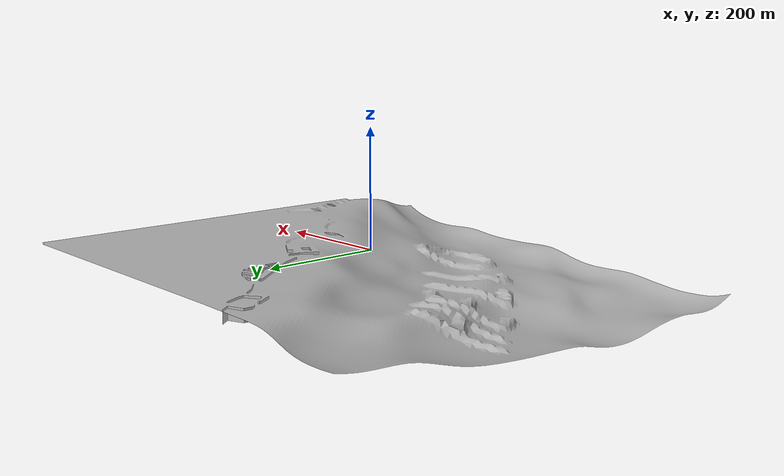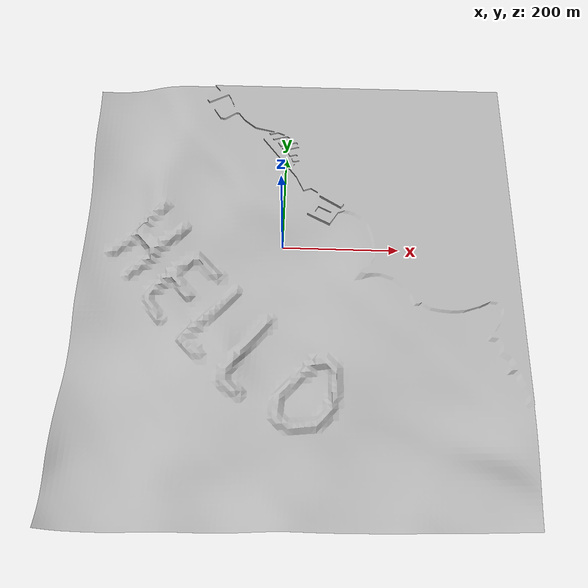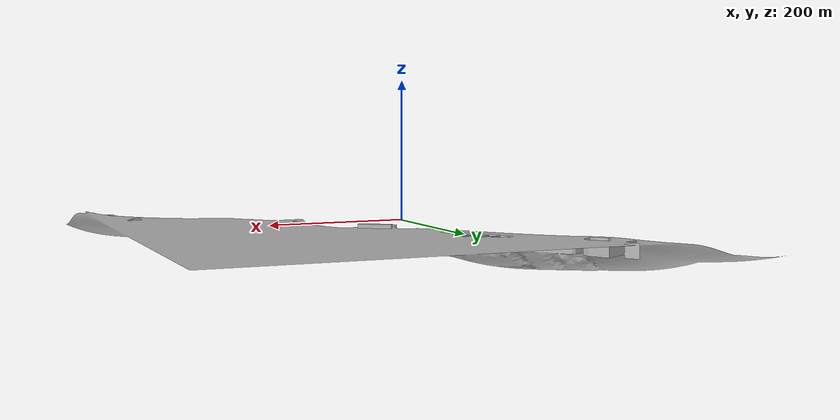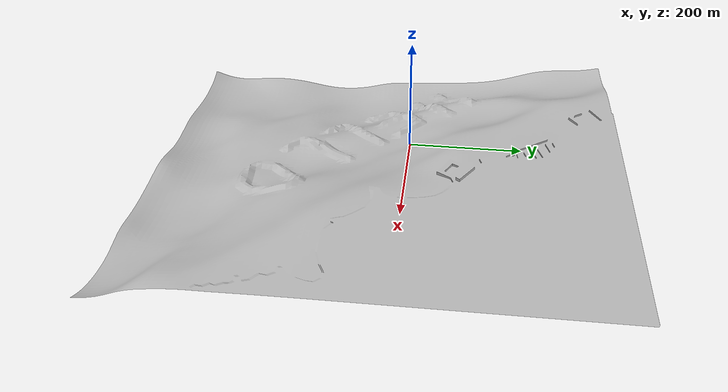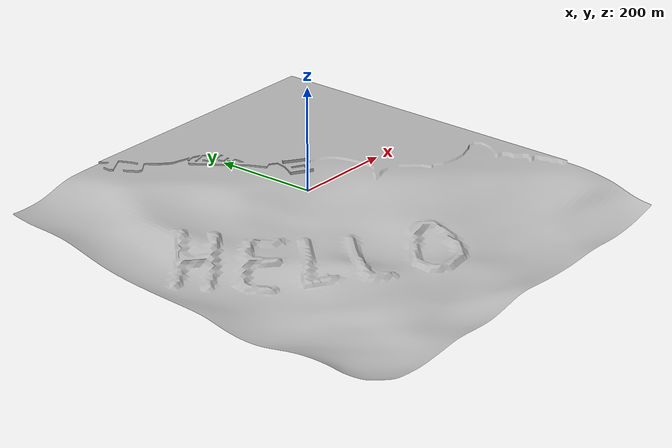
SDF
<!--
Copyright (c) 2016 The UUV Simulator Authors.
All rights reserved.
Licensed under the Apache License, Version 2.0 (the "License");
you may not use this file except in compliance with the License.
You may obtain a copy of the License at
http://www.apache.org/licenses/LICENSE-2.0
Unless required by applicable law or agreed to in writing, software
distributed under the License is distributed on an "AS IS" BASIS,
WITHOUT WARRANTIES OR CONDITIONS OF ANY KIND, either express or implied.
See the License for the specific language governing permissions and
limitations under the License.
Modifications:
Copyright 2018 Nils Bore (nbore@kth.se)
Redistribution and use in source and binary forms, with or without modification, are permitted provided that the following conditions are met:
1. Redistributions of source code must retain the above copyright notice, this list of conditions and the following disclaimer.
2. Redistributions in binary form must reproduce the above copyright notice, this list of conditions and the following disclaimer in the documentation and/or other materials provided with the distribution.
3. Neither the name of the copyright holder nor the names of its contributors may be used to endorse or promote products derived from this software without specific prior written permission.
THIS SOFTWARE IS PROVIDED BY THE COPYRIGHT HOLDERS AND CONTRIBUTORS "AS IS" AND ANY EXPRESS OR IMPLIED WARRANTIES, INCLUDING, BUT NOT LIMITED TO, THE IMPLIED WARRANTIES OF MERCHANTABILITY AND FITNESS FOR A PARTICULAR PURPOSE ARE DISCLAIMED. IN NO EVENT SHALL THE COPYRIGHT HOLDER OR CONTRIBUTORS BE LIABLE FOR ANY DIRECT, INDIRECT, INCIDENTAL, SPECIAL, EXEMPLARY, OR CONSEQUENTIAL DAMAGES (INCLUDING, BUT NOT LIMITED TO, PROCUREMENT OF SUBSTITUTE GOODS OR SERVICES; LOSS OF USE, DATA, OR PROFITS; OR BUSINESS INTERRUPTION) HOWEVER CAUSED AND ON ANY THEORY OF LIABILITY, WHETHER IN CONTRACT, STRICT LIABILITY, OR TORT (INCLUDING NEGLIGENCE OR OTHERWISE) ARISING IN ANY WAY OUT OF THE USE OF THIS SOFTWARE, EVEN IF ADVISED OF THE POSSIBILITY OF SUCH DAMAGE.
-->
<?xml version="1.0" ?>
<sdf version="1.5">
  <model name="biograd">
    <static>true</static>
    <link name="link">
      <collision name="ground">
        <pose>0 0 0 0 0 0</pose>
        <geometry>
          <mesh><uri>model://biograd/meshes/heightmap.dae</uri></mesh>
        </geometry>
		<laser_retro>50</laser_retro>
      </collision>

      <visual name="ground_sand">
        <cast_shadows>true</cast_shadows>
        <pose>0 0 0 0 0 0</pose>
        <geometry>
          <mesh><uri>model://biograd/meshes/heightmap.dae</uri></mesh>
        </geometry>
        <material>
          <script>
            <uri>file://Media/materials/scripts/sand.material</uri>
            <name>UUVSimulator/SandAndStones</name>
          </script>
        </material>
		<laser_retro>50</laser_retro>
      </visual>
    </link>
  </model>
</sdf>
